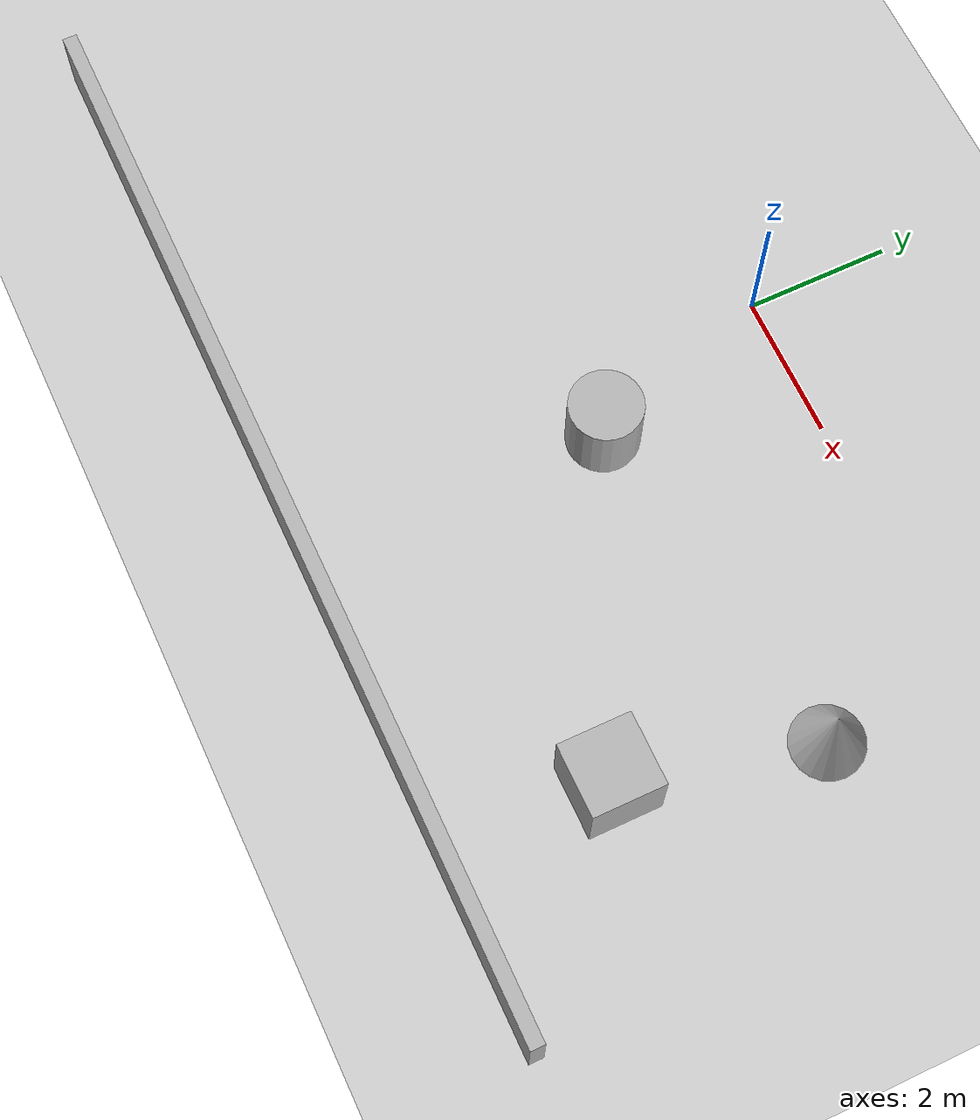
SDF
<sdf version="1.10">
 <world name="ackermann_steering">
  <model name="ground_plane">
   <static>true</static>
   <link name="link">
    <collision name="collision">
     <geometry><plane><normal>0 0 1</normal><size>100 100</size></plane></geometry>
     <surface>
      <friction>
       <ode><mu>50</mu></ode>
       <bullet><friction>1</friction><rolling_friction>0.10000000000000001</rolling_friction></bullet>
      </friction>
     </surface>
    </collision>
    <visual name="visual">
     <geometry><plane><normal>0 0 1</normal><size>100 100</size></plane></geometry>
     <material>
      <ambient>0.800000012 0.800000012 0.800000012 1</ambient>
      <diffuse>0.800000012 0.800000012 0.800000012 1</diffuse>
      <specular>0.800000012 0.800000012 0.800000012 1</specular>
     </material>
    </visual>
    <inertial>
     <mass>1</mass>
     <inertia><ixx>1</ixx><ixy>0</ixy><ixz>0</ixz><iyy>1</iyy><iyz>0</iyz><izz>1</izz></inertia>
    </inertial>
   </link>
  </model>
  <model name="box_1_1">
   <pose>0.30190816563714185 -6.9170193959489552 0.5 6.228769976978208e-22 9.3279699610216574e-22 1.5699999999999998</pose>
   <link name="box_link">
    <inertial>
     <inertia><ixx>0.16666</ixx><ixy>0</ixy><ixz>0</ixz><iyy>0.16666</iyy><iyz>0</iyz><izz>0.16666</izz></inertia>
     <mass>1</mass>
    </inertial>
    <collision name="box_collision"><geometry><box><size>1 1 1</size></box></geometry></collision>
    <visual name="box_visual">
     <geometry><box><size>0.20000000000000001 15 1</size></box></geometry>
     <material>
      <ambient>0.300000012 0.300000012 0.300000012 1</ambient>
      <diffuse>0.699999988 0.699999988 0.699999988 1</diffuse>
      <specular>1 1 1 1</specular>
     </material>
    </visual>
   </link>
   <static>false</static>
  </model>
  <model name="box_0">
   <pose>5.1723645166716157 -4.6993612116940202 0.5 0 0 0</pose>
   <link name="box_link">
    <inertial>
     <inertia><ixx>0.16666</ixx><ixy>0</ixy><ixz>0</ixz><iyy>0.16666</iyy><iyz>0</iyz><izz>0.16666</izz></inertia>
     <mass>1</mass>
    </inertial>
    <collision name="box_collision"><geometry><box><size>1 1 1</size></box></geometry></collision>
    <visual name="box_visual">
     <geometry><box><size>1 1 1</size></box></geometry>
     <material>
      <ambient>0.300000012 0.300000012 0.300000012 1</ambient>
      <diffuse>0.699999988 0.699999988 0.699999988 1</diffuse>
      <specular>1 1 1 1</specular>
     </material>
    </visual>
   </link>
   <static>false</static>
  </model>
  <model name="cylinder">
   <pose>0.89729464054107666 -2.681190013885498 0.5 0 0 0</pose>
   <link name="cylinder_link">
    <inertial>
     <inertia>
      <ixx>0.14580000000000001</ixx>
      <ixy>0</ixy>
      <ixz>0</ixz>
      <iyy>0.14580000000000001</iyy>
      <iyz>0</iyz>
      <izz>0.125</izz>
     </inertia>
     <mass>1</mass>
    </inertial>
    <collision name="cylinder_collision">
     <geometry><cylinder><radius>0.5</radius><length>1</length></cylinder></geometry>
    </collision>
    <visual name="cylinder_visual">
     <geometry><cylinder><radius>0.5</radius><length>1</length></cylinder></geometry>
     <material>
      <ambient>0.300000012 0.300000012 0.300000012 1</ambient>
      <diffuse>0.699999988 0.699999988 0.699999988 1</diffuse>
      <specular>1 1 1 1</specular>
     </material>
    </visual>
   </link>
   <static>false</static>
  </model>
  <model name="cone_0">
   <pose>5.8128178357702316 -1.9765055599569834 0.5 0 0 0</pose>
   <link name="cone_link">
    <inertial>
     <inertia>
      <ixx>0.074999999999999997</ixx>
      <ixy>0</ixy>
      <ixz>0</ixz>
      <iyy>0.074999999999999997</iyy>
      <iyz>0</iyz>
      <izz>0.074999999999999997</izz>
     </inertia>
     <mass>1</mass>
    </inertial>
    <collision name="cone_collision">
     <geometry><cone><radius>0.5</radius><length>1</length></cone></geometry>
    </collision>
    <visual name="cone_visual">
     <geometry><cone><radius>0.5</radius><length>1</length></cone></geometry>
     <material>
      <ambient>0.300000012 0.300000012 0.300000012 1</ambient>
      <diffuse>0.699999988 0.699999988 0.699999988 1</diffuse>
      <specular>1 1 1 1</specular>
     </material>
    </visual>
   </link>
   <static>false</static>
  </model>
 </world>
</sdf>
